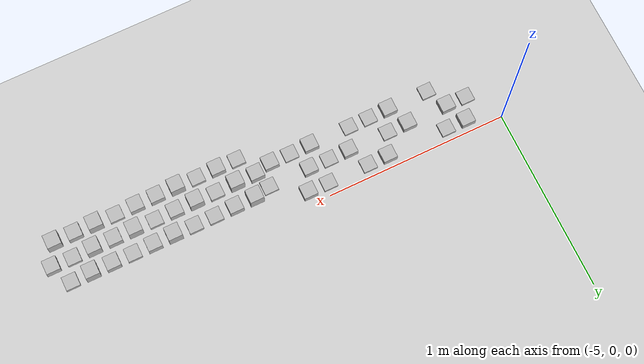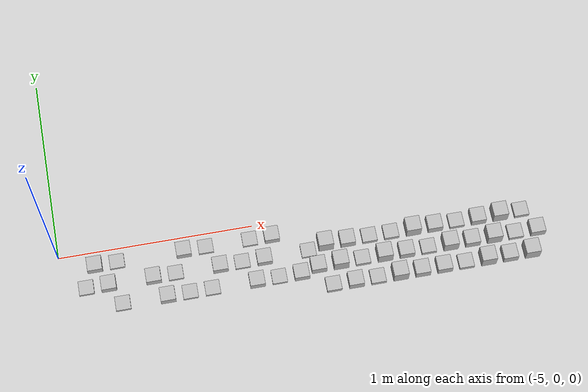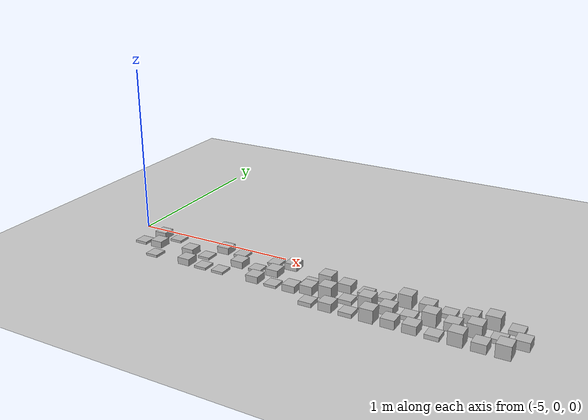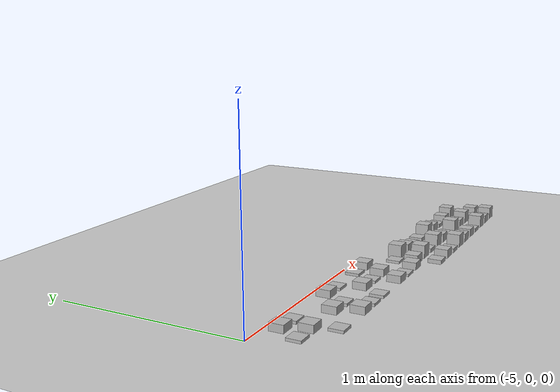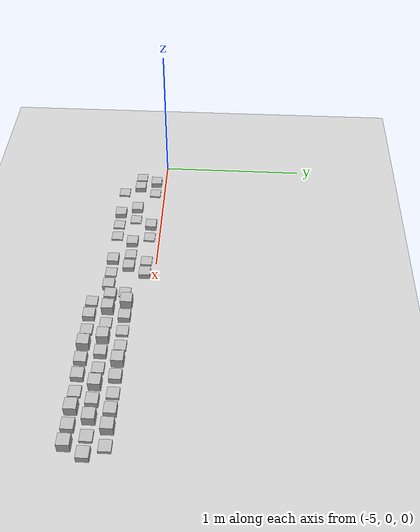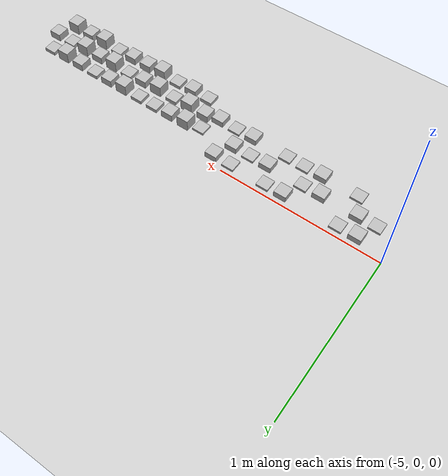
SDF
<sdf version="1.6">
 <world name="default">
  <light name="sun" type="directional">
   <pose>0 0 10 0 -0 0</pose>
   <diffuse>0.8 0.8 0.8 1</diffuse>
   <specular>0.2 0.2 0.2 1</specular>
   <attenuation>
    <range>1000</range>
    <constant>0.9</constant>
    <linear>0.01</linear>
    <quadratic>0.001</quadratic>
   </attenuation>
   <direction>-0.5 0.1 -0.9</direction>
  </light>
  <model name="ground_plane">
   <static>1</static>
   <link name="link">
    <collision name="collision">
     <geometry><plane><normal>0 0 1</normal><size>100 100</size></plane></geometry>
     <surface>
      <contact><collide_bitmask>65535</collide_bitmask></contact>
      <friction><ode><mu>100</mu><mu2>50</mu2></ode></friction>
     </surface>
    </collision>
    <visual name="visual">
     <cast_shadows>0</cast_shadows>
     <geometry><plane><normal>0 0 1</normal><size>100 100</size></plane></geometry>
     <material>
      <script><uri>file://media/materials/scripts/gazebo.material</uri><name>Gazebo/Grey</name></script>
     </material>
    </visual>
   </link>
  </model>
  <gravity>0 0 -9.8</gravity>
  <magnetic_field>6e-06 2.3e-05 -4.2e-05</magnetic_field>
  <atmosphere type="adiabatic"/>
  <physics type="ode">
   <max_step_size>0.001</max_step_size>
   <real_time_factor>1</real_time_factor>
   <real_time_update_rate>1000</real_time_update_rate>
   <ode>
    <solver><type>world</type></solver>
    <constraints>
     <contact_max_correcting_vel>0.1</contact_max_correcting_vel>
     <contact_surface_layer>0.0001</contact_surface_layer>
    </constraints>
   </ode>
  </physics>
  <scene><ambient>0.4 0.4 0.4 1</ambient><background>0.7 0.7 0.7 1</background><shadows>1</shadows></scene>
  <audio><device>default</device></audio>
  <spherical_coordinates>
   <surface_model>EARTH_WGS84</surface_model>
   <latitude_deg>0</latitude_deg>
   <longitude_deg>0</longitude_deg>
   <elevation>0</elevation>
   <heading_deg>0</heading_deg>
  </spherical_coordinates>
  <model name="frc2016_roughterrain">
   <static>1</static>
   <link name="link">
    <visual name="platform">
     <pose>0 0 0.08269 0 -0 0</pose>
     <geometry><box><size>1.27 0.5969 0.003175</size></box></geometry>
    </visual>
    <collision name="platform">
     <pose>0 0 0.08269 0 -0 0</pose>
     <geometry><box><size>1.27 0.5969 0.003175</size></box></geometry>
    </collision>
    <visual name="row1_block1_sm">
     <pose>0.51435 0.1143 0.09698 0 -0 0</pose>
     <geometry><box><size>0.0762 0.0762 0.0254</size></box></geometry>
    </visual>
    <collision name="row1_block1_sm">
     <pose>0.51435 0.1143 0.09698 0 -0 0</pose>
     <geometry><box><size>0.0762 0.0762 0.0254</size></box></geometry>
    </collision>
    <visual name="row1_block2_lg">
     <pose>0.40005 0.1143 0.12238 0 -0 0</pose>
     <geometry><box><size>0.0762 0.0762 0.0762</size></box></geometry>
    </visual>
    <collision name="row1_block2_lg">
     <pose>0.40005 0.1143 0.12238 0 -0 0</pose>
     <geometry><box><size>0.0762 0.0762 0.0762</size></box></geometry>
    </collision>
    <visual name="row1_block3_md">
     <pose>0.28575 0.1143 0.10968 0 -0 0</pose>
     <geometry><box><size>0.0762 0.0762 0.0508</size></box></geometry>
    </visual>
    <collision name="row1_block3_md">
     <pose>0.28575 0.1143 0.10968 0 -0 0</pose>
     <geometry><box><size>0.0762 0.0762 0.0508</size></box></geometry>
    </collision>
    <visual name="row1_block4_sm">
     <pose>0.17145 0.1143 0.09698 0 -0 0</pose>
     <geometry><box><size>0.0762 0.0762 0.0254</size></box></geometry>
    </visual>
    <collision name="row1_block4_sm">
     <pose>0.17145 0.1143 0.09698 0 -0 0</pose>
     <geometry><box><size>0.0762 0.0762 0.0254</size></box></geometry>
    </collision>
    <visual name="row1_block5_md">
     <pose>0.05715 0.1143 0.10968 0 -0 0</pose>
     <geometry><box><size>0.0762 0.0762 0.0508</size></box></geometry>
    </visual>
    <collision name="row1_block5_md">
     <pose>0.05715 0.1143 0.10968 0 -0 0</pose>
     <geometry><box><size>0.0762 0.0762 0.0508</size></box></geometry>
    </collision>
    <visual name="row1_block6_lg">
     <pose>-0.05715 0.1143 0.12238 0 -0 0</pose>
     <geometry><box><size>0.0762 0.0762 0.0762</size></box></geometry>
    </visual>
    <collision name="row1_block6_lg">
     <pose>-0.05715 0.1143 0.12238 0 -0 0</pose>
     <geometry><box><size>0.0762 0.0762 0.0762</size></box></geometry>
    </collision>
    <visual name="row1_block7_sm">
     <pose>-0.17145 0.1143 0.09698 0 -0 0</pose>
     <geometry><box><size>0.0762 0.0762 0.0254</size></box></geometry>
    </visual>
    <collision name="row1_block7_sm">
     <pose>-0.17145 0.1143 0.09698 0 -0 0</pose>
     <geometry><box><size>0.0762 0.0762 0.0254</size></box></geometry>
    </collision>
    <visual name="row1_block8_sm">
     <pose>-0.28575 0.1143 0.09698 0 -0 0</pose>
     <geometry><box><size>0.0762 0.0762 0.0254</size></box></geometry>
    </visual>
    <collision name="row1_block8_sm">
     <pose>-0.28575 0.1143 0.09698 0 -0 0</pose>
     <geometry><box><size>0.0762 0.0762 0.0254</size></box></geometry>
    </collision>
    <visual name="row1_block9_md">
     <pose>-0.40005 0.1143 0.10968 0 -0 0</pose>
     <geometry><box><size>0.0762 0.0762 0.0508</size></box></geometry>
    </visual>
    <collision name="row1_block9_md">
     <pose>-0.40005 0.1143 0.10968 0 -0 0</pose>
     <geometry><box><size>0.0762 0.0762 0.0508</size></box></geometry>
    </collision>
    <visual name="row1_block10_lg">
     <pose>-0.51435 0.1143 0.12238 0 -0 0</pose>
     <geometry><box><size>0.0762 0.0762 0.0762</size></box></geometry>
    </visual>
    <collision name="row1_block10_lg">
     <pose>-0.51435 0.1143 0.12238 0 -0 0</pose>
     <geometry><box><size>0.0762 0.0762 0.0762</size></box></geometry>
    </collision>
    <visual name="row2_block1_md">
     <pose>0.5715 0 0.10968 0 -0 0</pose>
     <geometry><box><size>0.0762 0.0762 0.0508</size></box></geometry>
    </visual>
    <collision name="row2_block1_md">
     <pose>0.5715 0 0.10968 0 -0 0</pose>
     <geometry><box><size>0.0762 0.0762 0.0508</size></box></geometry>
    </collision>
    <visual name="row2_block2_sm">
     <pose>0.4572 0 0.09698 0 -0 0</pose>
     <geometry><box><size>0.0762 0.0762 0.0254</size></box></geometry>
    </visual>
    <collision name="row2_block2_sm">
     <pose>0.4572 0 0.09698 0 -0 0</pose>
     <geometry><box><size>0.0762 0.0762 0.0254</size></box></geometry>
    </collision>
    <visual name="row2_block3_lg">
     <pose>0.3429 0 0.12238 0 -0 0</pose>
     <geometry><box><size>0.0762 0.0762 0.0762</size></box></geometry>
    </visual>
    <collision name="row2_block3_lg">
     <pose>0.3429 0 0.12238 0 -0 0</pose>
     <geometry><box><size>0.0762 0.0762 0.0762</size></box></geometry>
    </collision>
    <visual name="row2_block4_md">
     <pose>0.2286 0 0.10968 0 -0 0</pose>
     <geometry><box><size>0.0762 0.0762 0.0508</size></box></geometry>
    </visual>
    <collision name="row2_block4_md">
     <pose>0.2286 0 0.10968 0 -0 0</pose>
     <geometry><box><size>0.0762 0.0762 0.0508</size></box></geometry>
    </collision>
    <visual name="row2_block5_lg">
     <pose>0.1143 0 0.12238 0 -0 0</pose>
     <geometry><box><size>0.0762 0.0762 0.0762</size></box></geometry>
    </visual>
    <collision name="row2_block5_lg">
     <pose>0.1143 0 0.12238 0 -0 0</pose>
     <geometry><box><size>0.0762 0.0762 0.0762</size></box></geometry>
    </collision>
    <visual name="row2_block6_sm">
     <pose>0 0 0.09698 0 -0 0</pose>
     <geometry><box><size>0.0762 0.0762 0.0254</size></box></geometry>
    </visual>
    <collision name="row2_block6_sm">
     <pose>0 0 0.09698 0 -0 0</pose>
     <geometry><box><size>0.0762 0.0762 0.0254</size></box></geometry>
    </collision>
    <visual name="row2_block7_md">
     <pose>-0.1143 0 0.10968 0 -0 0</pose>
     <geometry><box><size>0.0762 0.0762 0.0508</size></box></geometry>
    </visual>
    <collision name="row2_block7_md">
     <pose>-0.1143 0 0.10968 0 -0 0</pose>
     <geometry><box><size>0.0762 0.0762 0.0508</size></box></geometry>
    </collision>
    <visual name="row2_block8_lg">
     <pose>-0.2286 0 0.12238 0 -0 0</pose>
     <geometry><box><size>0.0762 0.0762 0.0762</size></box></geometry>
    </visual>
    <collision name="row2_block8_lg">
     <pose>-0.2286 0 0.12238 0 -0 0</pose>
     <geometry><box><size>0.0762 0.0762 0.0762</size></box></geometry>
    </collision>
    <visual name="row2_block9_sm">
     <pose>-0.3429 0 0.09698 0 -0 0</pose>
     <geometry><box><size>0.0762 0.0762 0.0254</size></box></geometry>
    </visual>
    <collision name="row2_block9_sm">
     <pose>-0.3429 0 0.09698 0 -0 0</pose>
     <geometry><box><size>0.0762 0.0762 0.0254</size></box></geometry>
    </collision>
    <visual name="row2_block10_lg">
     <pose>-0.4572 0 0.12238 0 -0 0</pose>
     <geometry><box><size>0.0762 0.0762 0.0762</size></box></geometry>
    </visual>
    <collision name="row2_block10_lg">
     <pose>-0.4572 0 0.12238 0 -0 0</pose>
     <geometry><box><size>0.0762 0.0762 0.0762</size></box></geometry>
    </collision>
    <visual name="row2_block11_md">
     <pose>-0.5715 0 0.10968 0 -0 0</pose>
     <geometry><box><size>0.0762 0.0762 0.0508</size></box></geometry>
    </visual>
    <collision name="row2_block11_md">
     <pose>-0.5715 0 0.10968 0 -0 0</pose>
     <geometry><box><size>0.0762 0.0762 0.0508</size></box></geometry>
    </collision>
    <visual name="row3_block1_lg">
     <pose>0.51435 -0.1143 0.12238 0 -0 0</pose>
     <geometry><box><size>0.0762 0.0762 0.0762</size></box></geometry>
    </visual>
    <collision name="row3_block1_lg">
     <pose>0.51435 -0.1143 0.12238 0 -0 0</pose>
     <geometry><box><size>0.0762 0.0762 0.0762</size></box></geometry>
    </collision>
    <visual name="row3_block2_md">
     <pose>0.40005 -0.1143 0.10968 0 -0 0</pose>
     <geometry><box><size>0.0762 0.0762 0.0508</size></box></geometry>
    </visual>
    <collision name="row3_block2_md">
     <pose>0.40005 -0.1143 0.10968 0 -0 0</pose>
     <geometry><box><size>0.0762 0.0762 0.0508</size></box></geometry>
    </collision>
    <visual name="row3_block3_lg">
     <pose>0.28575 -0.1143 0.12238 0 -0 0</pose>
     <geometry><box><size>0.0762 0.0762 0.0762</size></box></geometry>
    </visual>
    <collision name="row3_block3_lg">
     <pose>0.28575 -0.1143 0.12238 0 -0 0</pose>
     <geometry><box><size>0.0762 0.0762 0.0762</size></box></geometry>
    </collision>
    <visual name="row3_block4_sm">
     <pose>0.17145 -0.1143 0.09698 0 -0 0</pose>
     <geometry><box><size>0.0762 0.0762 0.0254</size></box></geometry>
    </visual>
    <collision name="row3_block4_sm">
     <pose>0.17145 -0.1143 0.09698 0 -0 0</pose>
     <geometry><box><size>0.0762 0.0762 0.0254</size></box></geometry>
    </collision>
    <visual name="row3_block5_md">
     <pose>0.05715 -0.1143 0.10968 0 -0 0</pose>
     <geometry><box><size>0.0762 0.0762 0.0508</size></box></geometry>
    </visual>
    <collision name="row3_block5_md">
     <pose>0.05715 -0.1143 0.10968 0 -0 0</pose>
     <geometry><box><size>0.0762 0.0762 0.0508</size></box></geometry>
    </collision>
    <visual name="row3_block6_md">
     <pose>-0.05715 -0.1143 0.10968 0 -0 0</pose>
     <geometry><box><size>0.0762 0.0762 0.0508</size></box></geometry>
    </visual>
    <collision name="row3_block6_md">
     <pose>-0.05715 -0.1143 0.10968 0 -0 0</pose>
     <geometry><box><size>0.0762 0.0762 0.0508</size></box></geometry>
    </collision>
    <visual name="row3_block7_lg">
     <pose>-0.17145 -0.1143 0.12238 0 -0 0</pose>
     <geometry><box><size>0.0762 0.0762 0.0762</size></box></geometry>
    </visual>
    <collision name="row3_block7_lg">
     <pose>-0.17145 -0.1143 0.12238 0 -0 0</pose>
     <geometry><box><size>0.0762 0.0762 0.0762</size></box></geometry>
    </collision>
    <visual name="row3_block8_sm">
     <pose>-0.28575 -0.1143 0.09698 0 -0 0</pose>
     <geometry><box><size>0.0762 0.0762 0.0254</size></box></geometry>
    </visual>
    <collision name="row3_block8_sm">
     <pose>-0.28575 -0.1143 0.09698 0 -0 0</pose>
     <geometry><box><size>0.0762 0.0762 0.0254</size></box></geometry>
    </collision>
    <visual name="row3_block9_md">
     <pose>-0.40005 -0.1143 0.10968 0 -0 0</pose>
     <geometry><box><size>0.0762 0.0762 0.0508</size></box></geometry>
    </visual>
    <collision name="row3_block9_md">
     <pose>-0.40005 -0.1143 0.10968 0 -0 0</pose>
     <geometry><box><size>0.0762 0.0762 0.0508</size></box></geometry>
    </collision>
    <visual name="row3_block10_sm">
     <pose>-0.51435 -0.1143 0.09698 0 -0 0</pose>
     <geometry><box><size>0.0762 0.0762 0.0254</size></box></geometry>
    </visual>
    <collision name="row3_block10_sm">
     <pose>-0.51435 -0.1143 0.09698 0 -0 0</pose>
     <geometry><box><size>0.0762 0.0762 0.0254</size></box></geometry>
    </collision>
   </link>
   <pose>-3.12919 -0.274372 -0.08891 0 -0 0</pose>
  </model>
  <model name="frc2016_roughterrain_clone">
   <static>1</static>
   <link name="link">
    <visual name="platform">
     <pose>0 0 0.08269 0 -0 0</pose>
     <geometry><box><size>1.27 0.5969 0.003175</size></box></geometry>
    </visual>
    <collision name="platform">
     <pose>0 0 0.08269 0 -0 0</pose>
     <geometry><box><size>1.27 0.5969 0.003175</size></box></geometry>
    </collision>
    <visual name="row1_block1_sm">
     <pose>0.51435 0.1143 0.09698 0 -0 0</pose>
     <geometry><box><size>0.0762 0.0762 0.0254</size></box></geometry>
    </visual>
    <collision name="row1_block1_sm">
     <pose>0.51435 0.1143 0.09698 0 -0 0</pose>
     <geometry><box><size>0.0762 0.0762 0.0254</size></box></geometry>
    </collision>
    <visual name="row1_block2_lg">
     <pose>0.40005 0.1143 0.12238 0 -0 0</pose>
     <geometry><box><size>0.0762 0.0762 0.0762</size></box></geometry>
    </visual>
    <collision name="row1_block2_lg">
     <pose>0.40005 0.1143 0.12238 0 -0 0</pose>
     <geometry><box><size>0.0762 0.0762 0.0762</size></box></geometry>
    </collision>
    <visual name="row1_block3_md">
     <pose>0.28575 0.1143 0.10968 0 -0 0</pose>
     <geometry><box><size>0.0762 0.0762 0.0508</size></box></geometry>
    </visual>
    <collision name="row1_block3_md">
     <pose>0.28575 0.1143 0.10968 0 -0 0</pose>
     <geometry><box><size>0.0762 0.0762 0.0508</size></box></geometry>
    </collision>
    <visual name="row1_block4_sm">
     <pose>0.17145 0.1143 0.09698 0 -0 0</pose>
     <geometry><box><size>0.0762 0.0762 0.0254</size></box></geometry>
    </visual>
    <collision name="row1_block4_sm">
     <pose>0.17145 0.1143 0.09698 0 -0 0</pose>
     <geometry><box><size>0.0762 0.0762 0.0254</size></box></geometry>
    </collision>
    <visual name="row1_block5_md">
     <pose>0.05715 0.1143 0.10968 0 -0 0</pose>
     <geometry><box><size>0.0762 0.0762 0.0508</size></box></geometry>
    </visual>
    <collision name="row1_block5_md">
     <pose>0.05715 0.1143 0.10968 0 -0 0</pose>
     <geometry><box><size>0.0762 0.0762 0.0508</size></box></geometry>
    </collision>
    <visual name="row1_block6_lg">
     <pose>-0.05715 0.1143 0.12238 0 -0 0</pose>
     <geometry><box><size>0.0762 0.0762 0.0762</size></box></geometry>
    </visual>
    <collision name="row1_block6_lg">
     <pose>-0.05715 0.1143 0.12238 0 -0 0</pose>
     <geometry><box><size>0.0762 0.0762 0.0762</size></box></geometry>
    </collision>
    <visual name="row1_block7_sm">
     <pose>-0.17145 0.1143 0.09698 0 -0 0</pose>
     <geometry><box><size>0.0762 0.0762 0.0254</size></box></geometry>
    </visual>
    <collision name="row1_block7_sm">
     <pose>-0.17145 0.1143 0.09698 0 -0 0</pose>
     <geometry><box><size>0.0762 0.0762 0.0254</size></box></geometry>
    </collision>
    <visual name="row1_block8_sm">
     <pose>-0.28575 0.1143 0.09698 0 -0 0</pose>
     <geometry><box><size>0.0762 0.0762 0.0254</size></box></geometry>
    </visual>
    <collision name="row1_block8_sm">
     <pose>-0.28575 0.1143 0.09698 0 -0 0</pose>
     <geometry><box><size>0.0762 0.0762 0.0254</size></box></geometry>
    </collision>
    <visual name="row1_block9_md">
     <pose>-0.40005 0.1143 0.10968 0 -0 0</pose>
     <geometry><box><size>0.0762 0.0762 0.0508</size></box></geometry>
    </visual>
    <collision name="row1_block9_md">
     <pose>-0.40005 0.1143 0.10968 0 -0 0</pose>
     <geometry><box><size>0.0762 0.0762 0.0508</size></box></geometry>
    </collision>
    <visual name="row1_block10_lg">
     <pose>-0.51435 0.1143 0.12238 0 -0 0</pose>
     <geometry><box><size>0.0762 0.0762 0.0762</size></box></geometry>
    </visual>
    <collision name="row1_block10_lg">
     <pose>-0.51435 0.1143 0.12238 0 -0 0</pose>
     <geometry><box><size>0.0762 0.0762 0.0762</size></box></geometry>
    </collision>
    <visual name="row2_block1_md">
     <pose>0.5715 0 0.10968 0 -0 0</pose>
     <geometry><box><size>0.0762 0.0762 0.0508</size></box></geometry>
    </visual>
    <collision name="row2_block1_md">
     <pose>0.5715 0 0.10968 0 -0 0</pose>
     <geometry><box><size>0.0762 0.0762 0.0508</size></box></geometry>
    </collision>
    <visual name="row2_block2_sm">
     <pose>0.4572 0 0.09698 0 -0 0</pose>
     <geometry><box><size>0.0762 0.0762 0.0254</size></box></geometry>
    </visual>
    <collision name="row2_block2_sm">
     <pose>0.4572 0 0.09698 0 -0 0</pose>
     <geometry><box><size>0.0762 0.0762 0.0254</size></box></geometry>
    </collision>
    <visual name="row2_block3_lg">
     <pose>0.3429 0 0.12238 0 -0 0</pose>
     <geometry><box><size>0.0762 0.0762 0.0762</size></box></geometry>
    </visual>
    <collision name="row2_block3_lg">
     <pose>0.3429 0 0.12238 0 -0 0</pose>
     <geometry><box><size>0.0762 0.0762 0.0762</size></box></geometry>
    </collision>
    <visual name="row2_block4_md">
     <pose>0.2286 0 0.10968 0 -0 0</pose>
     <geometry><box><size>0.0762 0.0762 0.0508</size></box></geometry>
    </visual>
    <collision name="row2_block4_md">
     <pose>0.2286 0 0.10968 0 -0 0</pose>
     <geometry><box><size>0.0762 0.0762 0.0508</size></box></geometry>
    </collision>
    <visual name="row2_block5_lg">
     <pose>0.1143 0 0.12238 0 -0 0</pose>
     <geometry><box><size>0.0762 0.0762 0.0762</size></box></geometry>
    </visual>
    <collision name="row2_block5_lg">
     <pose>0.1143 0 0.12238 0 -0 0</pose>
     <geometry><box><size>0.0762 0.0762 0.0762</size></box></geometry>
    </collision>
    <visual name="row2_block6_sm">
     <pose>0 0 0.09698 0 -0 0</pose>
     <geometry><box><size>0.0762 0.0762 0.0254</size></box></geometry>
    </visual>
    <collision name="row2_block6_sm">
     <pose>0 0 0.09698 0 -0 0</pose>
     <geometry><box><size>0.0762 0.0762 0.0254</size></box></geometry>
    </collision>
    <visual name="row2_block7_md">
     <pose>-0.1143 0 0.10968 0 -0 0</pose>
     <geometry><box><size>0.0762 0.0762 0.0508</size></box></geometry>
    </visual>
    <collision name="row2_block7_md">
     <pose>-0.1143 0 0.10968 0 -0 0</pose>
     <geometry><box><size>0.0762 0.0762 0.0508</size></box></geometry>
    </collision>
    <visual name="row2_block8_lg">
     <pose>-0.2286 0 0.12238 0 -0 0</pose>
     <geometry><box><size>0.0762 0.0762 0.0762</size></box></geometry>
    </visual>
    <collision name="row2_block8_lg">
     <pose>-0.2286 0 0.12238 0 -0 0</pose>
     <geometry><box><size>0.0762 0.0762 0.0762</size></box></geometry>
    </collision>
    <visual name="row2_block9_sm">
     <pose>-0.3429 0 0.09698 0 -0 0</pose>
     <geometry><box><size>0.0762 0.0762 0.0254</size></box></geometry>
    </visual>
    <collision name="row2_block9_sm">
     <pose>-0.3429 0 0.09698 0 -0 0</pose>
     <geometry><box><size>0.0762 0.0762 0.0254</size></box></geometry>
    </collision>
    <visual name="row2_block10_lg">
     <pose>-0.4572 0 0.12238 0 -0 0</pose>
     <geometry><box><size>0.0762 0.0762 0.0762</size></box></geometry>
    </visual>
    <collision name="row2_block10_lg">
     <pose>-0.4572 0 0.12238 0 -0 0</pose>
     <geometry><box><size>0.0762 0.0762 0.0762</size></box></geometry>
    </collision>
    <visual name="row2_block11_md">
     <pose>-0.5715 0 0.10968 0 -0 0</pose>
     <geometry><box><size>0.0762 0.0762 0.0508</size></box></geometry>
    </visual>
    <collision name="row2_block11_md">
     <pose>-0.5715 0 0.10968 0 -0 0</pose>
     <geometry><box><size>0.0762 0.0762 0.0508</size></box></geometry>
    </collision>
    <visual name="row3_block1_lg">
     <pose>0.51435 -0.1143 0.12238 0 -0 0</pose>
     <geometry><box><size>0.0762 0.0762 0.0762</size></box></geometry>
    </visual>
    <collision name="row3_block1_lg">
     <pose>0.51435 -0.1143 0.12238 0 -0 0</pose>
     <geometry><box><size>0.0762 0.0762 0.0762</size></box></geometry>
    </collision>
    <visual name="row3_block2_md">
     <pose>0.40005 -0.1143 0.10968 0 -0 0</pose>
     <geometry><box><size>0.0762 0.0762 0.0508</size></box></geometry>
    </visual>
    <collision name="row3_block2_md">
     <pose>0.40005 -0.1143 0.10968 0 -0 0</pose>
     <geometry><box><size>0.0762 0.0762 0.0508</size></box></geometry>
    </collision>
    <visual name="row3_block3_lg">
     <pose>0.28575 -0.1143 0.12238 0 -0 0</pose>
     <geometry><box><size>0.0762 0.0762 0.0762</size></box></geometry>
    </visual>
    <collision name="row3_block3_lg">
     <pose>0.28575 -0.1143 0.12238 0 -0 0</pose>
     <geometry><box><size>0.0762 0.0762 0.0762</size></box></geometry>
    </collision>
    <visual name="row3_block4_sm">
     <pose>0.17145 -0.1143 0.09698 0 -0 0</pose>
     <geometry><box><size>0.0762 0.0762 0.0254</size></box></geometry>
    </visual>
    <collision name="row3_block4_sm">
     <pose>0.17145 -0.1143 0.09698 0 -0 0</pose>
     <geometry><box><size>0.0762 0.0762 0.0254</size></box></geometry>
    </collision>
    <visual name="row3_block5_md">
     <pose>0.05715 -0.1143 0.10968 0 -0 0</pose>
     <geometry><box><size>0.0762 0.0762 0.0508</size></box></geometry>
    </visual>
    <collision name="row3_block5_md">
     <pose>0.05715 -0.1143 0.10968 0 -0 0</pose>
     <geometry><box><size>0.0762 0.0762 0.0508</size></box></geometry>
    </collision>
    <visual name="row3_block6_md">
     <pose>-0.05715 -0.1143 0.10968 0 -0 0</pose>
     <geometry><box><size>0.0762 0.0762 0.0508</size></box></geometry>
    </visual>
    <collision name="row3_block6_md">
     <pose>-0.05715 -0.1143 0.10968 0 -0 0</pose>
     <geometry><box><size>0.0762 0.0762 0.0508</size></box></geometry>
    </collision>
    <visual name="row3_block7_lg">
     <pose>-0.17145 -0.1143 0.12238 0 -0 0</pose>
     <geometry><box><size>0.0762 0.0762 0.0762</size></box></geometry>
    </visual>
    <collision name="row3_block7_lg">
     <pose>-0.17145 -0.1143 0.12238 0 -0 0</pose>
     <geometry><box><size>0.0762 0.0762 0.0762</size></box></geometry>
    </collision>
    <visual name="row3_block8_sm">
     <pose>-0.28575 -0.1143 0.09698 0 -0 0</pose>
     <geometry><box><size>0.0762 0.0762 0.0254</size></box></geometry>
    </visual>
    <collision name="row3_block8_sm">
     <pose>-0.28575 -0.1143 0.09698 0 -0 0</pose>
     <geometry><box><size>0.0762 0.0762 0.0254</size></box></geometry>
    </collision>
    <visual name="row3_block9_md">
     <pose>-0.40005 -0.1143 0.10968 0 -0 0</pose>
     <geometry><box><size>0.0762 0.0762 0.0508</size></box></geometry>
    </visual>
    <collision name="row3_block9_md">
     <pose>-0.40005 -0.1143 0.10968 0 -0 0</pose>
     <geometry><box><size>0.0762 0.0762 0.0508</size></box></geometry>
    </collision>
    <visual name="row3_block10_sm">
     <pose>-0.51435 -0.1143 0.09698 0 -0 0</pose>
     <geometry><box><size>0.0762 0.0762 0.0254</size></box></geometry>
    </visual>
    <collision name="row3_block10_sm">
     <pose>-0.51435 -0.1143 0.09698 0 -0 0</pose>
     <geometry><box><size>0.0762 0.0762 0.0254</size></box></geometry>
    </collision>
   </link>
   <pose>-4.3072 -0.183561 -0.123162 0 -0 0</pose>
  </model>
 </world>
</sdf>
